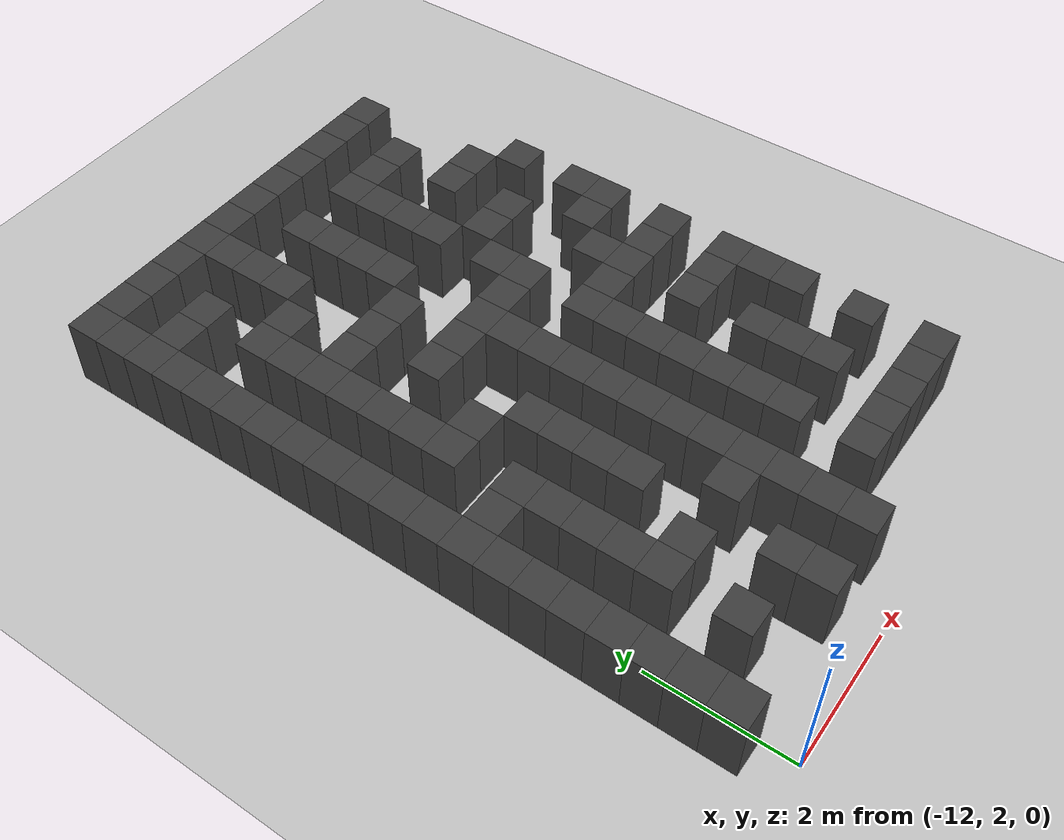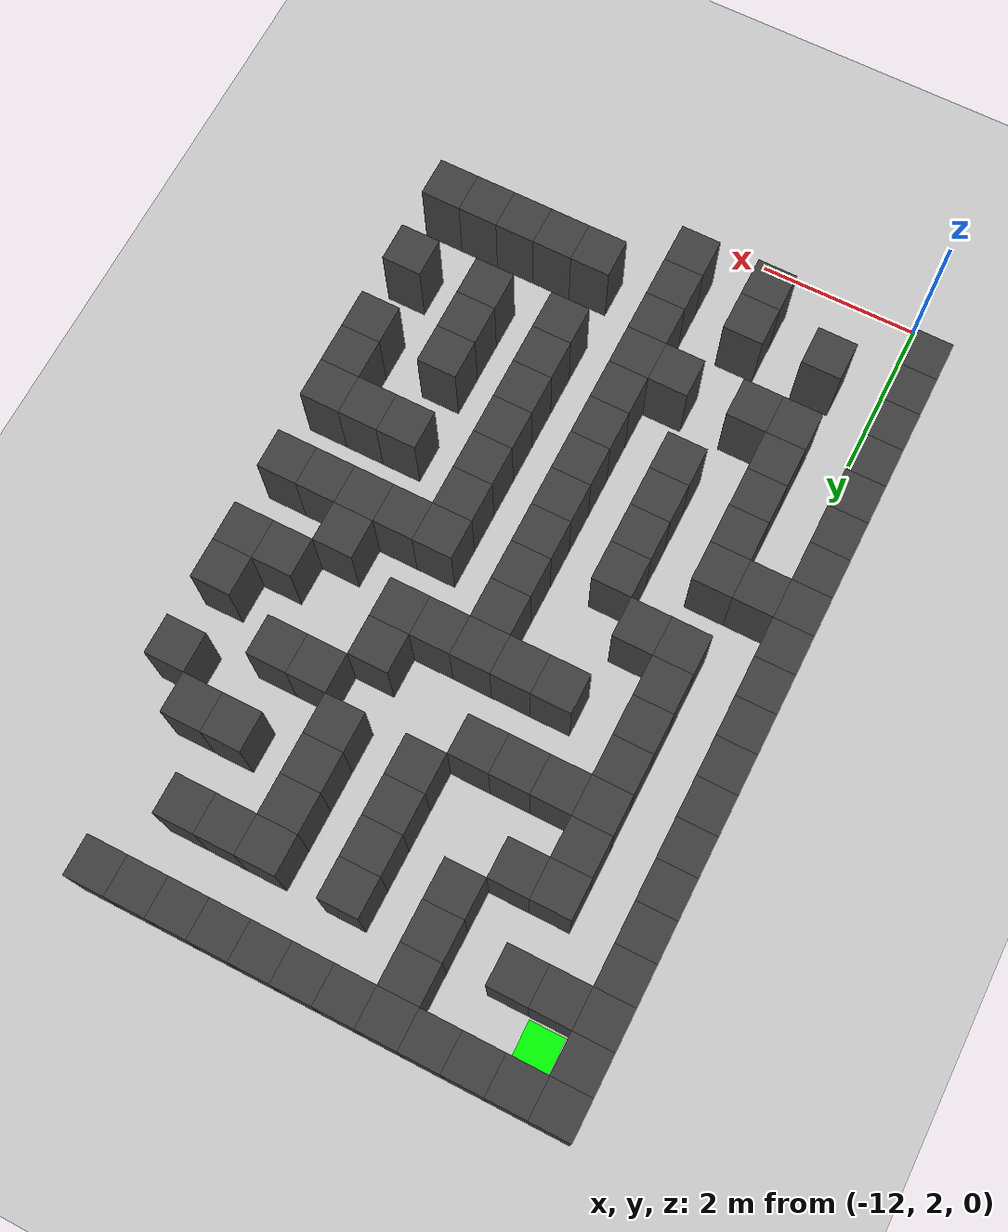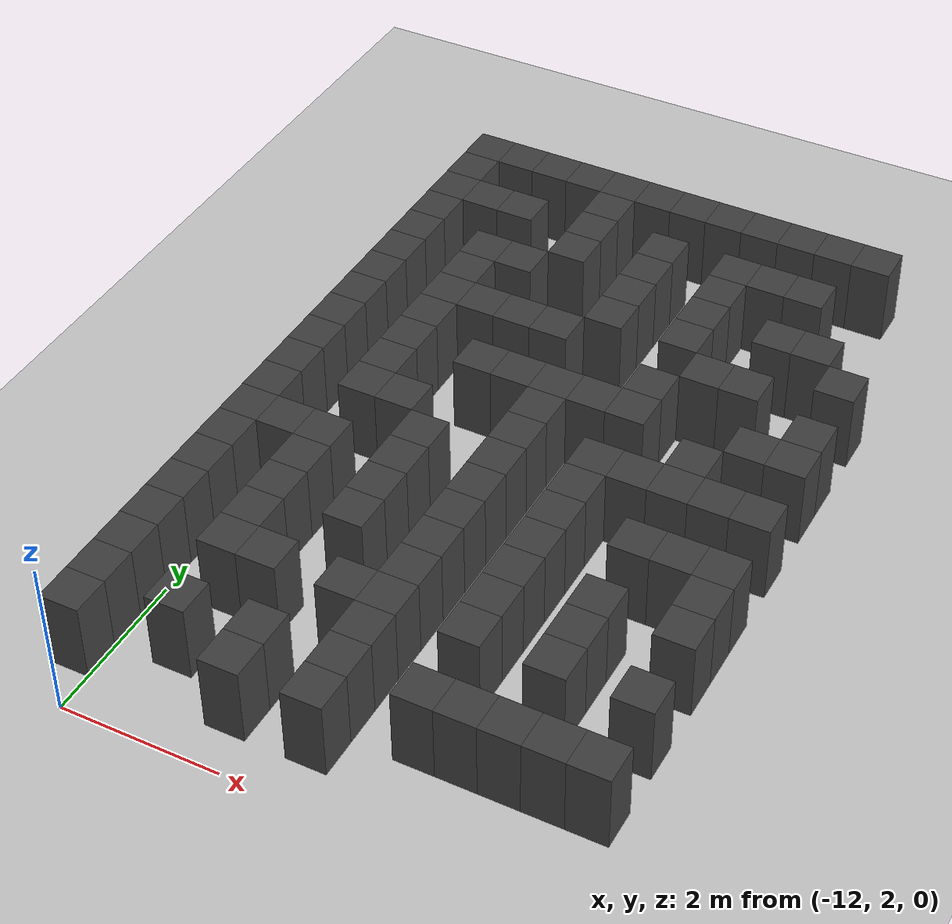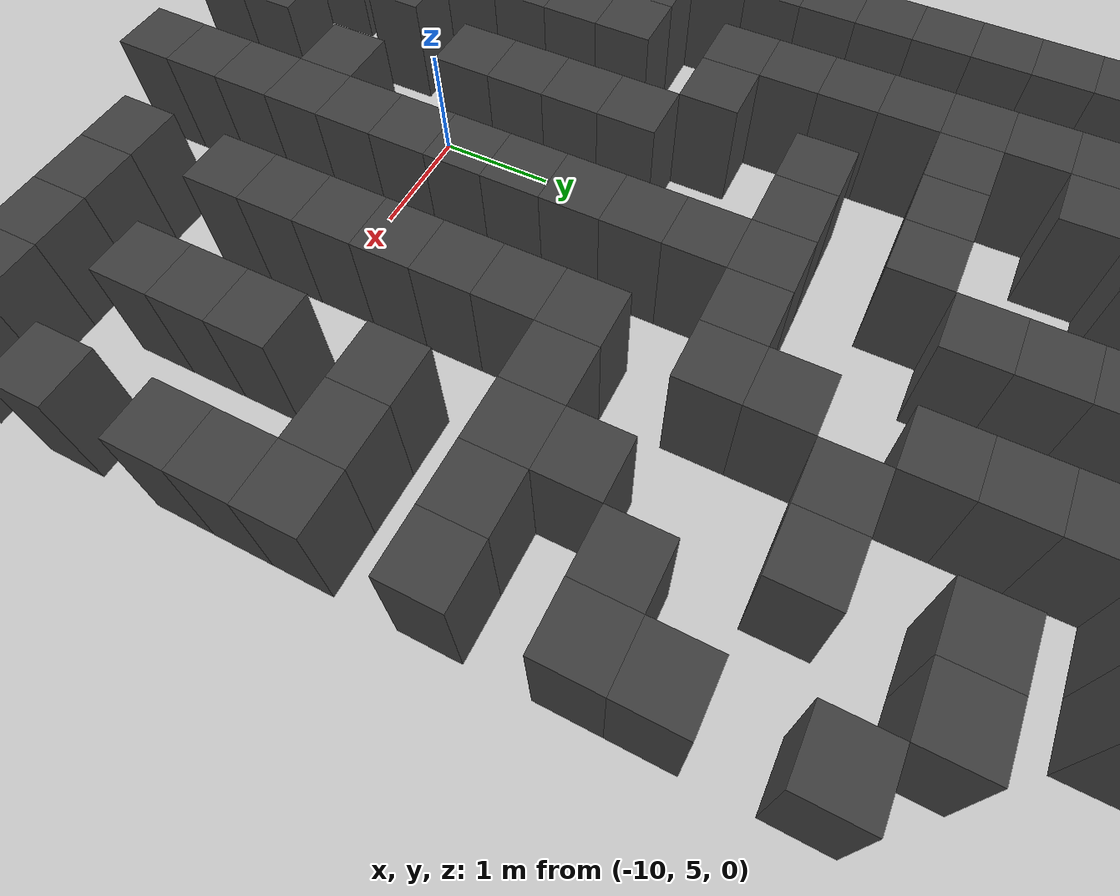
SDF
<sdf version="1.7">
 <world name="map_16588">
  <model name="ground_plane">
   <static>true</static>
   <link name="link">
    <collision name="collision">
     <geometry><plane><normal>0 0 1</normal><size>200 200</size></plane></geometry>
    </collision>
    <visual name="visual">
     <geometry><plane><normal>0 0 1</normal><size>200 200</size></plane></geometry>
     <material><ambient>0.8 0.8 0.8 1</ambient><diffuse>0.8 0.8 0.8 1</diffuse></material>
    </visual>
   </link>
  </model>
  <model name="maze_environment">
   <static>true</static>
   <link name="wall_0">
    <pose>-12.250 12.250 0.500 0 0 0</pose>
    <collision name="col"><geometry><box><size>0.5 0.5 1.0</size></box></geometry></collision>
    <visual name="vis">
     <geometry><box><size>0.5 0.5 1.0</size></box></geometry>
     <material><ambient>0.15 0.15 0.15 1</ambient><diffuse>0.25 0.25 0.25 1</diffuse></material>
    </visual>
   </link>
   <link name="wall_1">
    <pose>-11.750 12.250 0.500 0 0 0</pose>
    <collision name="col"><geometry><box><size>0.5 0.5 1.0</size></box></geometry></collision>
    <visual name="vis">
     <geometry><box><size>0.5 0.5 1.0</size></box></geometry>
     <material><ambient>0.15 0.15 0.15 1</ambient><diffuse>0.25 0.25 0.25 1</diffuse></material>
    </visual>
   </link>
   <link name="wall_2">
    <pose>-11.250 12.250 0.500 0 0 0</pose>
    <collision name="col"><geometry><box><size>0.5 0.5 1.0</size></box></geometry></collision>
    <visual name="vis">
     <geometry><box><size>0.5 0.5 1.0</size></box></geometry>
     <material><ambient>0.15 0.15 0.15 1</ambient><diffuse>0.25 0.25 0.25 1</diffuse></material>
    </visual>
   </link>
   <link name="wall_3">
    <pose>-10.750 12.250 0.500 0 0 0</pose>
    <collision name="col"><geometry><box><size>0.5 0.5 1.0</size></box></geometry></collision>
    <visual name="vis">
     <geometry><box><size>0.5 0.5 1.0</size></box></geometry>
     <material><ambient>0.15 0.15 0.15 1</ambient><diffuse>0.25 0.25 0.25 1</diffuse></material>
    </visual>
   </link>
   <link name="wall_4">
    <pose>-10.250 12.250 0.500 0 0 0</pose>
    <collision name="col"><geometry><box><size>0.5 0.5 1.0</size></box></geometry></collision>
    <visual name="vis">
     <geometry><box><size>0.5 0.5 1.0</size></box></geometry>
     <material><ambient>0.15 0.15 0.15 1</ambient><diffuse>0.25 0.25 0.25 1</diffuse></material>
    </visual>
   </link>
   <link name="wall_5">
    <pose>-9.750 12.250 0.500 0 0 0</pose>
    <collision name="col"><geometry><box><size>0.5 0.5 1.0</size></box></geometry></collision>
    <visual name="vis">
     <geometry><box><size>0.5 0.5 1.0</size></box></geometry>
     <material><ambient>0.15 0.15 0.15 1</ambient><diffuse>0.25 0.25 0.25 1</diffuse></material>
    </visual>
   </link>
   <link name="wall_6">
    <pose>-9.250 12.250 0.500 0 0 0</pose>
    <collision name="col"><geometry><box><size>0.5 0.5 1.0</size></box></geometry></collision>
    <visual name="vis">
     <geometry><box><size>0.5 0.5 1.0</size></box></geometry>
     <material><ambient>0.15 0.15 0.15 1</ambient><diffuse>0.25 0.25 0.25 1</diffuse></material>
    </visual>
   </link>
   <link name="wall_7">
    <pose>-8.750 12.250 0.500 0 0 0</pose>
    <collision name="col"><geometry><box><size>0.5 0.5 1.0</size></box></geometry></collision>
    <visual name="vis">
     <geometry><box><size>0.5 0.5 1.0</size></box></geometry>
     <material><ambient>0.15 0.15 0.15 1</ambient><diffuse>0.25 0.25 0.25 1</diffuse></material>
    </visual>
   </link>
   <link name="wall_8">
    <pose>-8.250 12.250 0.500 0 0 0</pose>
    <collision name="col"><geometry><box><size>0.5 0.5 1.0</size></box></geometry></collision>
    <visual name="vis">
     <geometry><box><size>0.5 0.5 1.0</size></box></geometry>
     <material><ambient>0.15 0.15 0.15 1</ambient><diffuse>0.25 0.25 0.25 1</diffuse></material>
    </visual>
   </link>
   <link name="wall_9">
    <pose>-7.750 12.250 0.500 0 0 0</pose>
    <collision name="col"><geometry><box><size>0.5 0.5 1.0</size></box></geometry></collision>
    <visual name="vis">
     <geometry><box><size>0.5 0.5 1.0</size></box></geometry>
     <material><ambient>0.15 0.15 0.15 1</ambient><diffuse>0.25 0.25 0.25 1</diffuse></material>
    </visual>
   </link>
   <link name="wall_10">
    <pose>-7.250 12.250 0.500 0 0 0</pose>
    <collision name="col"><geometry><box><size>0.5 0.5 1.0</size></box></geometry></collision>
    <visual name="vis">
     <geometry><box><size>0.5 0.5 1.0</size></box></geometry>
     <material><ambient>0.15 0.15 0.15 1</ambient><diffuse>0.25 0.25 0.25 1</diffuse></material>
    </visual>
   </link>
   <link name="wall_11">
    <pose>-6.750 12.250 0.500 0 0 0</pose>
    <collision name="col"><geometry><box><size>0.5 0.5 1.0</size></box></geometry></collision>
    <visual name="vis">
     <geometry><box><size>0.5 0.5 1.0</size></box></geometry>
     <material><ambient>0.15 0.15 0.15 1</ambient><diffuse>0.25 0.25 0.25 1</diffuse></material>
    </visual>
   </link>
   <link name="wall_50">
    <pose>-12.250 11.750 0.500 0 0 0</pose>
    <collision name="col"><geometry><box><size>0.5 0.5 1.0</size></box></geometry></collision>
    <visual name="vis">
     <geometry><box><size>0.5 0.5 1.0</size></box></geometry>
     <material><ambient>0.15 0.15 0.15 1</ambient><diffuse>0.25 0.25 0.25 1</diffuse></material>
    </visual>
   </link>
   <link name="wall_51">
    <pose>-10.250 11.750 0.500 0 0 0</pose>
    <collision name="col"><geometry><box><size>0.5 0.5 1.0</size></box></geometry></collision>
    <visual name="vis">
     <geometry><box><size>0.5 0.5 1.0</size></box></geometry>
     <material><ambient>0.15 0.15 0.15 1</ambient><diffuse>0.25 0.25 0.25 1</diffuse></material>
    </visual>
   </link>
   <link name="wall_59">
    <pose>-12.250 11.250 0.500 0 0 0</pose>
    <collision name="col"><geometry><box><size>0.5 0.5 1.0</size></box></geometry></collision>
    <visual name="vis">
     <geometry><box><size>0.5 0.5 1.0</size></box></geometry>
     <material><ambient>0.15 0.15 0.15 1</ambient><diffuse>0.25 0.25 0.25 1</diffuse></material>
    </visual>
   </link>
   <link name="wall_60">
    <pose>-11.750 11.250 0.500 0 0 0</pose>
    <collision name="col"><geometry><box><size>0.5 0.5 1.0</size></box></geometry></collision>
    <visual name="vis">
     <geometry><box><size>0.5 0.5 1.0</size></box></geometry>
     <material><ambient>0.15 0.15 0.15 1</ambient><diffuse>0.25 0.25 0.25 1</diffuse></material>
    </visual>
   </link>
   <link name="wall_61">
    <pose>-11.250 11.250 0.500 0 0 0</pose>
    <collision name="col"><geometry><box><size>0.5 0.5 1.0</size></box></geometry></collision>
    <visual name="vis">
     <geometry><box><size>0.5 0.5 1.0</size></box></geometry>
     <material><ambient>0.15 0.15 0.15 1</ambient><diffuse>0.25 0.25 0.25 1</diffuse></material>
    </visual>
   </link>
   <link name="wall_62">
    <pose>-10.250 11.250 0.500 0 0 0</pose>
    <collision name="col"><geometry><box><size>0.5 0.5 1.0</size></box></geometry></collision>
    <visual name="vis">
     <geometry><box><size>0.5 0.5 1.0</size></box></geometry>
     <material><ambient>0.15 0.15 0.15 1</ambient><diffuse>0.25 0.25 0.25 1</diffuse></material>
    </visual>
   </link>
   <link name="wall_63">
    <pose>-9.250 11.250 0.500 0 0 0</pose>
    <collision name="col"><geometry><box><size>0.5 0.5 1.0</size></box></geometry></collision>
    <visual name="vis">
     <geometry><box><size>0.5 0.5 1.0</size></box></geometry>
     <material><ambient>0.15 0.15 0.15 1</ambient><diffuse>0.25 0.25 0.25 1</diffuse></material>
    </visual>
   </link>
   <link name="wall_64">
    <pose>-8.250 11.250 0.500 0 0 0</pose>
    <collision name="col"><geometry><box><size>0.5 0.5 1.0</size></box></geometry></collision>
    <visual name="vis">
     <geometry><box><size>0.5 0.5 1.0</size></box></geometry>
     <material><ambient>0.15 0.15 0.15 1</ambient><diffuse>0.25 0.25 0.25 1</diffuse></material>
    </visual>
   </link>
   <link name="wall_65">
    <pose>-7.750 11.250 0.500 0 0 0</pose>
    <collision name="col"><geometry><box><size>0.5 0.5 1.0</size></box></geometry></collision>
    <visual name="vis">
     <geometry><box><size>0.5 0.5 1.0</size></box></geometry>
     <material><ambient>0.15 0.15 0.15 1</ambient><diffuse>0.25 0.25 0.25 1</diffuse></material>
    </visual>
   </link>
   <link name="wall_66">
    <pose>-7.250 11.250 0.500 0 0 0</pose>
    <collision name="col"><geometry><box><size>0.5 0.5 1.0</size></box></geometry></collision>
    <visual name="vis">
     <geometry><box><size>0.5 0.5 1.0</size></box></geometry>
     <material><ambient>0.15 0.15 0.15 1</ambient><diffuse>0.25 0.25 0.25 1</diffuse></material>
    </visual>
   </link>
   <link name="wall_93">
    <pose>-12.250 10.750 0.500 0 0 0</pose>
    <collision name="col"><geometry><box><size>0.5 0.5 1.0</size></box></geometry></collision>
    <visual name="vis">
     <geometry><box><size>0.5 0.5 1.0</size></box></geometry>
     <material><ambient>0.15 0.15 0.15 1</ambient><diffuse>0.25 0.25 0.25 1</diffuse></material>
    </visual>
   </link>
   <link name="wall_94">
    <pose>-10.250 10.750 0.500 0 0 0</pose>
    <collision name="col"><geometry><box><size>0.5 0.5 1.0</size></box></geometry></collision>
    <visual name="vis">
     <geometry><box><size>0.5 0.5 1.0</size></box></geometry>
     <material><ambient>0.15 0.15 0.15 1</ambient><diffuse>0.25 0.25 0.25 1</diffuse></material>
    </visual>
   </link>
   <link name="wall_95">
    <pose>-9.250 10.750 0.500 0 0 0</pose>
    <collision name="col"><geometry><box><size>0.5 0.5 1.0</size></box></geometry></collision>
    <visual name="vis">
     <geometry><box><size>0.5 0.5 1.0</size></box></geometry>
     <material><ambient>0.15 0.15 0.15 1</ambient><diffuse>0.25 0.25 0.25 1</diffuse></material>
    </visual>
   </link>
   <link name="wall_96">
    <pose>-8.250 10.750 0.500 0 0 0</pose>
    <collision name="col"><geometry><box><size>0.5 0.5 1.0</size></box></geometry></collision>
    <visual name="vis">
     <geometry><box><size>0.5 0.5 1.0</size></box></geometry>
     <material><ambient>0.15 0.15 0.15 1</ambient><diffuse>0.25 0.25 0.25 1</diffuse></material>
    </visual>
   </link>
   <link name="wall_108">
    <pose>-12.250 10.250 0.500 0 0 0</pose>
    <collision name="col"><geometry><box><size>0.5 0.5 1.0</size></box></geometry></collision>
    <visual name="vis">
     <geometry><box><size>0.5 0.5 1.0</size></box></geometry>
     <material><ambient>0.15 0.15 0.15 1</ambient><diffuse>0.25 0.25 0.25 1</diffuse></material>
    </visual>
   </link>
   <link name="wall_109">
    <pose>-11.250 10.250 0.500 0 0 0</pose>
    <collision name="col"><geometry><box><size>0.5 0.5 1.0</size></box></geometry></collision>
    <visual name="vis">
     <geometry><box><size>0.5 0.5 1.0</size></box></geometry>
     <material><ambient>0.15 0.15 0.15 1</ambient><diffuse>0.25 0.25 0.25 1</diffuse></material>
    </visual>
   </link>
   <link name="wall_110">
    <pose>-10.750 10.250 0.500 0 0 0</pose>
    <collision name="col"><geometry><box><size>0.5 0.5 1.0</size></box></geometry></collision>
    <visual name="vis">
     <geometry><box><size>0.5 0.5 1.0</size></box></geometry>
     <material><ambient>0.15 0.15 0.15 1</ambient><diffuse>0.25 0.25 0.25 1</diffuse></material>
    </visual>
   </link>
   <link name="wall_111">
    <pose>-9.250 10.250 0.500 0 0 0</pose>
    <collision name="col"><geometry><box><size>0.5 0.5 1.0</size></box></geometry></collision>
    <visual name="vis">
     <geometry><box><size>0.5 0.5 1.0</size></box></geometry>
     <material><ambient>0.15 0.15 0.15 1</ambient><diffuse>0.25 0.25 0.25 1</diffuse></material>
    </visual>
   </link>
   <link name="wall_112">
    <pose>-8.250 10.250 0.500 0 0 0</pose>
    <collision name="col"><geometry><box><size>0.5 0.5 1.0</size></box></geometry></collision>
    <visual name="vis">
     <geometry><box><size>0.5 0.5 1.0</size></box></geometry>
     <material><ambient>0.15 0.15 0.15 1</ambient><diffuse>0.25 0.25 0.25 1</diffuse></material>
    </visual>
   </link>
   <link name="wall_113">
    <pose>-7.250 10.250 0.500 0 0 0</pose>
    <collision name="col"><geometry><box><size>0.5 0.5 1.0</size></box></geometry></collision>
    <visual name="vis">
     <geometry><box><size>0.5 0.5 1.0</size></box></geometry>
     <material><ambient>0.15 0.15 0.15 1</ambient><diffuse>0.25 0.25 0.25 1</diffuse></material>
    </visual>
   </link>
   <link name="wall_114">
    <pose>-6.750 10.250 0.500 0 0 0</pose>
    <collision name="col"><geometry><box><size>0.5 0.5 1.0</size></box></geometry></collision>
    <visual name="vis">
     <geometry><box><size>0.5 0.5 1.0</size></box></geometry>
     <material><ambient>0.15 0.15 0.15 1</ambient><diffuse>0.25 0.25 0.25 1</diffuse></material>
    </visual>
   </link>
   <link name="wall_141">
    <pose>-12.250 9.750 0.500 0 0 0</pose>
    <collision name="col"><geometry><box><size>0.5 0.5 1.0</size></box></geometry></collision>
    <visual name="vis">
     <geometry><box><size>0.5 0.5 1.0</size></box></geometry>
     <material><ambient>0.15 0.15 0.15 1</ambient><diffuse>0.25 0.25 0.25 1</diffuse></material>
    </visual>
   </link>
   <link name="wall_142">
    <pose>-11.250 9.750 0.500 0 0 0</pose>
    <collision name="col"><geometry><box><size>0.5 0.5 1.0</size></box></geometry></collision>
    <visual name="vis">
     <geometry><box><size>0.5 0.5 1.0</size></box></geometry>
     <material><ambient>0.15 0.15 0.15 1</ambient><diffuse>0.25 0.25 0.25 1</diffuse></material>
    </visual>
   </link>
   <link name="wall_143">
    <pose>-9.250 9.750 0.500 0 0 0</pose>
    <collision name="col"><geometry><box><size>0.5 0.5 1.0</size></box></geometry></collision>
    <visual name="vis">
     <geometry><box><size>0.5 0.5 1.0</size></box></geometry>
     <material><ambient>0.15 0.15 0.15 1</ambient><diffuse>0.25 0.25 0.25 1</diffuse></material>
    </visual>
   </link>
   <link name="wall_144">
    <pose>-8.250 9.750 0.500 0 0 0</pose>
    <collision name="col"><geometry><box><size>0.5 0.5 1.0</size></box></geometry></collision>
    <visual name="vis">
     <geometry><box><size>0.5 0.5 1.0</size></box></geometry>
     <material><ambient>0.15 0.15 0.15 1</ambient><diffuse>0.25 0.25 0.25 1</diffuse></material>
    </visual>
   </link>
   <link name="wall_145">
    <pose>-6.250 9.750 0.500 0 0 0</pose>
    <collision name="col"><geometry><box><size>0.5 0.5 1.0</size></box></geometry></collision>
    <visual name="vis">
     <geometry><box><size>0.5 0.5 1.0</size></box></geometry>
     <material><ambient>0.15 0.15 0.15 1</ambient><diffuse>0.25 0.25 0.25 1</diffuse></material>
    </visual>
   </link>
   <link name="wall_155">
    <pose>-12.250 9.250 0.500 0 0 0</pose>
    <collision name="col"><geometry><box><size>0.5 0.5 1.0</size></box></geometry></collision>
    <visual name="vis">
     <geometry><box><size>0.5 0.5 1.0</size></box></geometry>
     <material><ambient>0.15 0.15 0.15 1</ambient><diffuse>0.25 0.25 0.25 1</diffuse></material>
    </visual>
   </link>
   <link name="wall_156">
    <pose>-11.250 9.250 0.500 0 0 0</pose>
    <collision name="col"><geometry><box><size>0.5 0.5 1.0</size></box></geometry></collision>
    <visual name="vis">
     <geometry><box><size>0.5 0.5 1.0</size></box></geometry>
     <material><ambient>0.15 0.15 0.15 1</ambient><diffuse>0.25 0.25 0.25 1</diffuse></material>
    </visual>
   </link>
   <link name="wall_157">
    <pose>-10.750 9.250 0.500 0 0 0</pose>
    <collision name="col"><geometry><box><size>0.5 0.5 1.0</size></box></geometry></collision>
    <visual name="vis">
     <geometry><box><size>0.5 0.5 1.0</size></box></geometry>
     <material><ambient>0.15 0.15 0.15 1</ambient><diffuse>0.25 0.25 0.25 1</diffuse></material>
    </visual>
   </link>
   <link name="wall_158">
    <pose>-10.250 9.250 0.500 0 0 0</pose>
    <collision name="col"><geometry><box><size>0.5 0.5 1.0</size></box></geometry></collision>
    <visual name="vis">
     <geometry><box><size>0.5 0.5 1.0</size></box></geometry>
     <material><ambient>0.15 0.15 0.15 1</ambient><diffuse>0.25 0.25 0.25 1</diffuse></material>
    </visual>
   </link>
   <link name="wall_159">
    <pose>-9.750 9.250 0.500 0 0 0</pose>
    <collision name="col"><geometry><box><size>0.5 0.5 1.0</size></box></geometry></collision>
    <visual name="vis">
     <geometry><box><size>0.5 0.5 1.0</size></box></geometry>
     <material><ambient>0.15 0.15 0.15 1</ambient><diffuse>0.25 0.25 0.25 1</diffuse></material>
    </visual>
   </link>
   <link name="wall_160">
    <pose>-7.750 9.250 0.500 0 0 0</pose>
    <collision name="col"><geometry><box><size>0.5 0.5 1.0</size></box></geometry></collision>
    <visual name="vis">
     <geometry><box><size>0.5 0.5 1.0</size></box></geometry>
     <material><ambient>0.15 0.15 0.15 1</ambient><diffuse>0.25 0.25 0.25 1</diffuse></material>
    </visual>
   </link>
   <link name="wall_161">
    <pose>-7.250 9.250 0.500 0 0 0</pose>
    <collision name="col"><geometry><box><size>0.5 0.5 1.0</size></box></geometry></collision>
    <visual name="vis">
     <geometry><box><size>0.5 0.5 1.0</size></box></geometry>
     <material><ambient>0.15 0.15 0.15 1</ambient><diffuse>0.25 0.25 0.25 1</diffuse></material>
    </visual>
   </link>
   <link name="wall_189">
    <pose>-12.250 8.750 0.500 0 0 0</pose>
    <collision name="col"><geometry><box><size>0.5 0.5 1.0</size></box></geometry></collision>
    <visual name="vis">
     <geometry><box><size>0.5 0.5 1.0</size></box></geometry>
     <material><ambient>0.15 0.15 0.15 1</ambient><diffuse>0.25 0.25 0.25 1</diffuse></material>
    </visual>
   </link>
   <link name="wall_190">
    <pose>-11.250 8.750 0.500 0 0 0</pose>
    <collision name="col"><geometry><box><size>0.5 0.5 1.0</size></box></geometry></collision>
    <visual name="vis">
     <geometry><box><size>0.5 0.5 1.0</size></box></geometry>
     <material><ambient>0.15 0.15 0.15 1</ambient><diffuse>0.25 0.25 0.25 1</diffuse></material>
    </visual>
   </link>
   <link name="wall_191">
    <pose>-8.250 8.750 0.500 0 0 0</pose>
    <collision name="col"><geometry><box><size>0.5 0.5 1.0</size></box></geometry></collision>
    <visual name="vis">
     <geometry><box><size>0.5 0.5 1.0</size></box></geometry>
     <material><ambient>0.15 0.15 0.15 1</ambient><diffuse>0.25 0.25 0.25 1</diffuse></material>
    </visual>
   </link>
   <link name="wall_192">
    <pose>-6.250 8.750 0.500 0 0 0</pose>
    <collision name="col"><geometry><box><size>0.5 0.5 1.0</size></box></geometry></collision>
    <visual name="vis">
     <geometry><box><size>0.5 0.5 1.0</size></box></geometry>
     <material><ambient>0.15 0.15 0.15 1</ambient><diffuse>0.25 0.25 0.25 1</diffuse></material>
    </visual>
   </link>
   <link name="wall_203">
    <pose>-12.250 8.250 0.500 0 0 0</pose>
    <collision name="col"><geometry><box><size>0.5 0.5 1.0</size></box></geometry></collision>
    <visual name="vis">
     <geometry><box><size>0.5 0.5 1.0</size></box></geometry>
     <material><ambient>0.15 0.15 0.15 1</ambient><diffuse>0.25 0.25 0.25 1</diffuse></material>
    </visual>
   </link>
   <link name="wall_204">
    <pose>-11.250 8.250 0.500 0 0 0</pose>
    <collision name="col"><geometry><box><size>0.5 0.5 1.0</size></box></geometry></collision>
    <visual name="vis">
     <geometry><box><size>0.5 0.5 1.0</size></box></geometry>
     <material><ambient>0.15 0.15 0.15 1</ambient><diffuse>0.25 0.25 0.25 1</diffuse></material>
    </visual>
   </link>
   <link name="wall_205">
    <pose>-10.250 8.250 0.500 0 0 0</pose>
    <collision name="col"><geometry><box><size>0.5 0.5 1.0</size></box></geometry></collision>
    <visual name="vis">
     <geometry><box><size>0.5 0.5 1.0</size></box></geometry>
     <material><ambient>0.15 0.15 0.15 1</ambient><diffuse>0.25 0.25 0.25 1</diffuse></material>
    </visual>
   </link>
   <link name="wall_206">
    <pose>-9.750 8.250 0.500 0 0 0</pose>
    <collision name="col"><geometry><box><size>0.5 0.5 1.0</size></box></geometry></collision>
    <visual name="vis">
     <geometry><box><size>0.5 0.5 1.0</size></box></geometry>
     <material><ambient>0.15 0.15 0.15 1</ambient><diffuse>0.25 0.25 0.25 1</diffuse></material>
    </visual>
   </link>
   <link name="wall_207">
    <pose>-9.250 8.250 0.500 0 0 0</pose>
    <collision name="col"><geometry><box><size>0.5 0.5 1.0</size></box></geometry></collision>
    <visual name="vis">
     <geometry><box><size>0.5 0.5 1.0</size></box></geometry>
     <material><ambient>0.15 0.15 0.15 1</ambient><diffuse>0.25 0.25 0.25 1</diffuse></material>
    </visual>
   </link>
   <link name="wall_208">
    <pose>-8.750 8.250 0.500 0 0 0</pose>
    <collision name="col"><geometry><box><size>0.5 0.5 1.0</size></box></geometry></collision>
    <visual name="vis">
     <geometry><box><size>0.5 0.5 1.0</size></box></geometry>
     <material><ambient>0.15 0.15 0.15 1</ambient><diffuse>0.25 0.25 0.25 1</diffuse></material>
    </visual>
   </link>
   <link name="wall_209">
    <pose>-8.250 8.250 0.500 0 0 0</pose>
    <collision name="col"><geometry><box><size>0.5 0.5 1.0</size></box></geometry></collision>
    <visual name="vis">
     <geometry><box><size>0.5 0.5 1.0</size></box></geometry>
     <material><ambient>0.15 0.15 0.15 1</ambient><diffuse>0.25 0.25 0.25 1</diffuse></material>
    </visual>
   </link>
   <link name="wall_210">
    <pose>-6.750 8.250 0.500 0 0 0</pose>
    <collision name="col"><geometry><box><size>0.5 0.5 1.0</size></box></geometry></collision>
    <visual name="vis">
     <geometry><box><size>0.5 0.5 1.0</size></box></geometry>
     <material><ambient>0.15 0.15 0.15 1</ambient><diffuse>0.25 0.25 0.25 1</diffuse></material>
    </visual>
   </link>
   <link name="wall_211">
    <pose>-6.250 8.250 0.500 0 0 0</pose>
    <collision name="col"><geometry><box><size>0.5 0.5 1.0</size></box></geometry></collision>
    <visual name="vis">
     <geometry><box><size>0.5 0.5 1.0</size></box></geometry>
     <material><ambient>0.15 0.15 0.15 1</ambient><diffuse>0.25 0.25 0.25 1</diffuse></material>
    </visual>
   </link>
   <link name="wall_233">
    <pose>-12.250 7.750 0.500 0 0 0</pose>
    <collision name="col"><geometry><box><size>0.5 0.5 1.0</size></box></geometry></collision>
    <visual name="vis">
     <geometry><box><size>0.5 0.5 1.0</size></box></geometry>
     <material><ambient>0.15 0.15 0.15 1</ambient><diffuse>0.25 0.25 0.25 1</diffuse></material>
    </visual>
   </link>
   <link name="wall_234">
    <pose>-11.250 7.750 0.500 0 0 0</pose>
    <collision name="col"><geometry><box><size>0.5 0.5 1.0</size></box></geometry></collision>
    <visual name="vis">
     <geometry><box><size>0.5 0.5 1.0</size></box></geometry>
     <material><ambient>0.15 0.15 0.15 1</ambient><diffuse>0.25 0.25 0.25 1</diffuse></material>
    </visual>
   </link>
   <link name="wall_235">
    <pose>-9.250 7.750 0.500 0 0 0</pose>
    <collision name="col"><geometry><box><size>0.5 0.5 1.0</size></box></geometry></collision>
    <visual name="vis">
     <geometry><box><size>0.5 0.5 1.0</size></box></geometry>
     <material><ambient>0.15 0.15 0.15 1</ambient><diffuse>0.25 0.25 0.25 1</diffuse></material>
    </visual>
   </link>
   <link name="wall_236">
    <pose>-7.250 7.750 0.500 0 0 0</pose>
    <collision name="col"><geometry><box><size>0.5 0.5 1.0</size></box></geometry></collision>
    <visual name="vis">
     <geometry><box><size>0.5 0.5 1.0</size></box></geometry>
     <material><ambient>0.15 0.15 0.15 1</ambient><diffuse>0.25 0.25 0.25 1</diffuse></material>
    </visual>
   </link>
   <link name="wall_250">
    <pose>-12.250 7.250 0.500 0 0 0</pose>
    <collision name="col"><geometry><box><size>0.5 0.5 1.0</size></box></geometry></collision>
    <visual name="vis">
     <geometry><box><size>0.5 0.5 1.0</size></box></geometry>
     <material><ambient>0.15 0.15 0.15 1</ambient><diffuse>0.25 0.25 0.25 1</diffuse></material>
    </visual>
   </link>
   <link name="wall_251">
    <pose>-11.250 7.250 0.500 0 0 0</pose>
    <collision name="col"><geometry><box><size>0.5 0.5 1.0</size></box></geometry></collision>
    <visual name="vis">
     <geometry><box><size>0.5 0.5 1.0</size></box></geometry>
     <material><ambient>0.15 0.15 0.15 1</ambient><diffuse>0.25 0.25 0.25 1</diffuse></material>
    </visual>
   </link>
   <link name="wall_252">
    <pose>-10.750 7.250 0.500 0 0 0</pose>
    <collision name="col"><geometry><box><size>0.5 0.5 1.0</size></box></geometry></collision>
    <visual name="vis">
     <geometry><box><size>0.5 0.5 1.0</size></box></geometry>
     <material><ambient>0.15 0.15 0.15 1</ambient><diffuse>0.25 0.25 0.25 1</diffuse></material>
    </visual>
   </link>
   <link name="wall_253">
    <pose>-9.250 7.250 0.500 0 0 0</pose>
    <collision name="col"><geometry><box><size>0.5 0.5 1.0</size></box></geometry></collision>
    <visual name="vis">
     <geometry><box><size>0.5 0.5 1.0</size></box></geometry>
     <material><ambient>0.15 0.15 0.15 1</ambient><diffuse>0.25 0.25 0.25 1</diffuse></material>
    </visual>
   </link>
   <link name="wall_254">
    <pose>-8.250 7.250 0.500 0 0 0</pose>
    <collision name="col"><geometry><box><size>0.5 0.5 1.0</size></box></geometry></collision>
    <visual name="vis">
     <geometry><box><size>0.5 0.5 1.0</size></box></geometry>
     <material><ambient>0.15 0.15 0.15 1</ambient><diffuse>0.25 0.25 0.25 1</diffuse></material>
    </visual>
   </link>
   <link name="wall_255">
    <pose>-7.750 7.250 0.500 0 0 0</pose>
    <collision name="col"><geometry><box><size>0.5 0.5 1.0</size></box></geometry></collision>
    <visual name="vis">
     <geometry><box><size>0.5 0.5 1.0</size></box></geometry>
     <material><ambient>0.15 0.15 0.15 1</ambient><diffuse>0.25 0.25 0.25 1</diffuse></material>
    </visual>
   </link>
   <link name="wall_256">
    <pose>-7.250 7.250 0.500 0 0 0</pose>
    <collision name="col"><geometry><box><size>0.5 0.5 1.0</size></box></geometry></collision>
    <visual name="vis">
     <geometry><box><size>0.5 0.5 1.0</size></box></geometry>
     <material><ambient>0.15 0.15 0.15 1</ambient><diffuse>0.25 0.25 0.25 1</diffuse></material>
    </visual>
   </link>
   <link name="wall_257">
    <pose>-6.750 7.250 0.500 0 0 0</pose>
    <collision name="col"><geometry><box><size>0.5 0.5 1.0</size></box></geometry></collision>
    <visual name="vis">
     <geometry><box><size>0.5 0.5 1.0</size></box></geometry>
     <material><ambient>0.15 0.15 0.15 1</ambient><diffuse>0.25 0.25 0.25 1</diffuse></material>
    </visual>
   </link>
   <link name="wall_258">
    <pose>-6.250 7.250 0.500 0 0 0</pose>
    <collision name="col"><geometry><box><size>0.5 0.5 1.0</size></box></geometry></collision>
    <visual name="vis">
     <geometry><box><size>0.5 0.5 1.0</size></box></geometry>
     <material><ambient>0.15 0.15 0.15 1</ambient><diffuse>0.25 0.25 0.25 1</diffuse></material>
    </visual>
   </link>
   <link name="wall_282">
    <pose>-12.250 6.750 0.500 0 0 0</pose>
    <collision name="col"><geometry><box><size>0.5 0.5 1.0</size></box></geometry></collision>
    <visual name="vis">
     <geometry><box><size>0.5 0.5 1.0</size></box></geometry>
     <material><ambient>0.15 0.15 0.15 1</ambient><diffuse>0.25 0.25 0.25 1</diffuse></material>
    </visual>
   </link>
   <link name="wall_283">
    <pose>-10.250 6.750 0.500 0 0 0</pose>
    <collision name="col"><geometry><box><size>0.5 0.5 1.0</size></box></geometry></collision>
    <visual name="vis">
     <geometry><box><size>0.5 0.5 1.0</size></box></geometry>
     <material><ambient>0.15 0.15 0.15 1</ambient><diffuse>0.25 0.25 0.25 1</diffuse></material>
    </visual>
   </link>
   <link name="wall_284">
    <pose>-9.250 6.750 0.500 0 0 0</pose>
    <collision name="col"><geometry><box><size>0.5 0.5 1.0</size></box></geometry></collision>
    <visual name="vis">
     <geometry><box><size>0.5 0.5 1.0</size></box></geometry>
     <material><ambient>0.15 0.15 0.15 1</ambient><diffuse>0.25 0.25 0.25 1</diffuse></material>
    </visual>
   </link>
   <link name="wall_285">
    <pose>-8.250 6.750 0.500 0 0 0</pose>
    <collision name="col"><geometry><box><size>0.5 0.5 1.0</size></box></geometry></collision>
    <visual name="vis">
     <geometry><box><size>0.5 0.5 1.0</size></box></geometry>
     <material><ambient>0.15 0.15 0.15 1</ambient><diffuse>0.25 0.25 0.25 1</diffuse></material>
    </visual>
   </link>
   <link name="wall_296">
    <pose>-12.250 6.250 0.500 0 0 0</pose>
    <collision name="col"><geometry><box><size>0.5 0.5 1.0</size></box></geometry></collision>
    <visual name="vis">
     <geometry><box><size>0.5 0.5 1.0</size></box></geometry>
     <material><ambient>0.15 0.15 0.15 1</ambient><diffuse>0.25 0.25 0.25 1</diffuse></material>
    </visual>
   </link>
   <link name="wall_297">
    <pose>-11.750 6.250 0.500 0 0 0</pose>
    <collision name="col"><geometry><box><size>0.5 0.5 1.0</size></box></geometry></collision>
    <visual name="vis">
     <geometry><box><size>0.5 0.5 1.0</size></box></geometry>
     <material><ambient>0.15 0.15 0.15 1</ambient><diffuse>0.25 0.25 0.25 1</diffuse></material>
    </visual>
   </link>
   <link name="wall_298">
    <pose>-11.250 6.250 0.500 0 0 0</pose>
    <collision name="col"><geometry><box><size>0.5 0.5 1.0</size></box></geometry></collision>
    <visual name="vis">
     <geometry><box><size>0.5 0.5 1.0</size></box></geometry>
     <material><ambient>0.15 0.15 0.15 1</ambient><diffuse>0.25 0.25 0.25 1</diffuse></material>
    </visual>
   </link>
   <link name="wall_299">
    <pose>-10.250 6.250 0.500 0 0 0</pose>
    <collision name="col"><geometry><box><size>0.5 0.5 1.0</size></box></geometry></collision>
    <visual name="vis">
     <geometry><box><size>0.5 0.5 1.0</size></box></geometry>
     <material><ambient>0.15 0.15 0.15 1</ambient><diffuse>0.25 0.25 0.25 1</diffuse></material>
    </visual>
   </link>
   <link name="wall_300">
    <pose>-9.250 6.250 0.500 0 0 0</pose>
    <collision name="col"><geometry><box><size>0.5 0.5 1.0</size></box></geometry></collision>
    <visual name="vis">
     <geometry><box><size>0.5 0.5 1.0</size></box></geometry>
     <material><ambient>0.15 0.15 0.15 1</ambient><diffuse>0.25 0.25 0.25 1</diffuse></material>
    </visual>
   </link>
   <link name="wall_301">
    <pose>-8.250 6.250 0.500 0 0 0</pose>
    <collision name="col"><geometry><box><size>0.5 0.5 1.0</size></box></geometry></collision>
    <visual name="vis">
     <geometry><box><size>0.5 0.5 1.0</size></box></geometry>
     <material><ambient>0.15 0.15 0.15 1</ambient><diffuse>0.25 0.25 0.25 1</diffuse></material>
    </visual>
   </link>
   <link name="wall_302">
    <pose>-7.250 6.250 0.500 0 0 0</pose>
    <collision name="col"><geometry><box><size>0.5 0.5 1.0</size></box></geometry></collision>
    <visual name="vis">
     <geometry><box><size>0.5 0.5 1.0</size></box></geometry>
     <material><ambient>0.15 0.15 0.15 1</ambient><diffuse>0.25 0.25 0.25 1</diffuse></material>
    </visual>
   </link>
   <link name="wall_303">
    <pose>-6.750 6.250 0.500 0 0 0</pose>
    <collision name="col"><geometry><box><size>0.5 0.5 1.0</size></box></geometry></collision>
    <visual name="vis">
     <geometry><box><size>0.5 0.5 1.0</size></box></geometry>
     <material><ambient>0.15 0.15 0.15 1</ambient><diffuse>0.25 0.25 0.25 1</diffuse></material>
    </visual>
   </link>
   <link name="wall_304">
    <pose>-6.250 6.250 0.500 0 0 0</pose>
    <collision name="col"><geometry><box><size>0.5 0.5 1.0</size></box></geometry></collision>
    <visual name="vis">
     <geometry><box><size>0.5 0.5 1.0</size></box></geometry>
     <material><ambient>0.15 0.15 0.15 1</ambient><diffuse>0.25 0.25 0.25 1</diffuse></material>
    </visual>
   </link>
   <link name="wall_331">
    <pose>-12.250 5.750 0.500 0 0 0</pose>
    <collision name="col"><geometry><box><size>0.5 0.5 1.0</size></box></geometry></collision>
    <visual name="vis">
     <geometry><box><size>0.5 0.5 1.0</size></box></geometry>
     <material><ambient>0.15 0.15 0.15 1</ambient><diffuse>0.25 0.25 0.25 1</diffuse></material>
    </visual>
   </link>
   <link name="wall_332">
    <pose>-11.250 5.750 0.500 0 0 0</pose>
    <collision name="col"><geometry><box><size>0.5 0.5 1.0</size></box></geometry></collision>
    <visual name="vis">
     <geometry><box><size>0.5 0.5 1.0</size></box></geometry>
     <material><ambient>0.15 0.15 0.15 1</ambient><diffuse>0.25 0.25 0.25 1</diffuse></material>
    </visual>
   </link>
   <link name="wall_333">
    <pose>-10.250 5.750 0.500 0 0 0</pose>
    <collision name="col"><geometry><box><size>0.5 0.5 1.0</size></box></geometry></collision>
    <visual name="vis">
     <geometry><box><size>0.5 0.5 1.0</size></box></geometry>
     <material><ambient>0.15 0.15 0.15 1</ambient><diffuse>0.25 0.25 0.25 1</diffuse></material>
    </visual>
   </link>
   <link name="wall_334">
    <pose>-9.250 5.750 0.500 0 0 0</pose>
    <collision name="col"><geometry><box><size>0.5 0.5 1.0</size></box></geometry></collision>
    <visual name="vis">
     <geometry><box><size>0.5 0.5 1.0</size></box></geometry>
     <material><ambient>0.15 0.15 0.15 1</ambient><diffuse>0.25 0.25 0.25 1</diffuse></material>
    </visual>
   </link>
   <link name="wall_335">
    <pose>-8.250 5.750 0.500 0 0 0</pose>
    <collision name="col"><geometry><box><size>0.5 0.5 1.0</size></box></geometry></collision>
    <visual name="vis">
     <geometry><box><size>0.5 0.5 1.0</size></box></geometry>
     <material><ambient>0.15 0.15 0.15 1</ambient><diffuse>0.25 0.25 0.25 1</diffuse></material>
    </visual>
   </link>
   <link name="wall_336">
    <pose>-6.250 5.750 0.500 0 0 0</pose>
    <collision name="col"><geometry><box><size>0.5 0.5 1.0</size></box></geometry></collision>
    <visual name="vis">
     <geometry><box><size>0.5 0.5 1.0</size></box></geometry>
     <material><ambient>0.15 0.15 0.15 1</ambient><diffuse>0.25 0.25 0.25 1</diffuse></material>
    </visual>
   </link>
   <link name="wall_345">
    <pose>-12.250 5.250 0.500 0 0 0</pose>
    <collision name="col"><geometry><box><size>0.5 0.5 1.0</size></box></geometry></collision>
    <visual name="vis">
     <geometry><box><size>0.5 0.5 1.0</size></box></geometry>
     <material><ambient>0.15 0.15 0.15 1</ambient><diffuse>0.25 0.25 0.25 1</diffuse></material>
    </visual>
   </link>
   <link name="wall_346">
    <pose>-11.250 5.250 0.500 0 0 0</pose>
    <collision name="col"><geometry><box><size>0.5 0.5 1.0</size></box></geometry></collision>
    <visual name="vis">
     <geometry><box><size>0.5 0.5 1.0</size></box></geometry>
     <material><ambient>0.15 0.15 0.15 1</ambient><diffuse>0.25 0.25 0.25 1</diffuse></material>
    </visual>
   </link>
   <link name="wall_347">
    <pose>-10.250 5.250 0.500 0 0 0</pose>
    <collision name="col"><geometry><box><size>0.5 0.5 1.0</size></box></geometry></collision>
    <visual name="vis">
     <geometry><box><size>0.5 0.5 1.0</size></box></geometry>
     <material><ambient>0.15 0.15 0.15 1</ambient><diffuse>0.25 0.25 0.25 1</diffuse></material>
    </visual>
   </link>
   <link name="wall_348">
    <pose>-9.250 5.250 0.500 0 0 0</pose>
    <collision name="col"><geometry><box><size>0.5 0.5 1.0</size></box></geometry></collision>
    <visual name="vis">
     <geometry><box><size>0.5 0.5 1.0</size></box></geometry>
     <material><ambient>0.15 0.15 0.15 1</ambient><diffuse>0.25 0.25 0.25 1</diffuse></material>
    </visual>
   </link>
   <link name="wall_349">
    <pose>-8.250 5.250 0.500 0 0 0</pose>
    <collision name="col"><geometry><box><size>0.5 0.5 1.0</size></box></geometry></collision>
    <visual name="vis">
     <geometry><box><size>0.5 0.5 1.0</size></box></geometry>
     <material><ambient>0.15 0.15 0.15 1</ambient><diffuse>0.25 0.25 0.25 1</diffuse></material>
    </visual>
   </link>
   <link name="wall_350">
    <pose>-7.250 5.250 0.500 0 0 0</pose>
    <collision name="col"><geometry><box><size>0.5 0.5 1.0</size></box></geometry></collision>
    <visual name="vis">
     <geometry><box><size>0.5 0.5 1.0</size></box></geometry>
     <material><ambient>0.15 0.15 0.15 1</ambient><diffuse>0.25 0.25 0.25 1</diffuse></material>
    </visual>
   </link>
   <link name="wall_351">
    <pose>-6.250 5.250 0.500 0 0 0</pose>
    <collision name="col"><geometry><box><size>0.5 0.5 1.0</size></box></geometry></collision>
    <visual name="vis">
     <geometry><box><size>0.5 0.5 1.0</size></box></geometry>
     <material><ambient>0.15 0.15 0.15 1</ambient><diffuse>0.25 0.25 0.25 1</diffuse></material>
    </visual>
   </link>
   <link name="wall_373">
    <pose>-12.250 4.750 0.500 0 0 0</pose>
    <collision name="col"><geometry><box><size>0.5 0.5 1.0</size></box></geometry></collision>
    <visual name="vis">
     <geometry><box><size>0.5 0.5 1.0</size></box></geometry>
     <material><ambient>0.15 0.15 0.15 1</ambient><diffuse>0.25 0.25 0.25 1</diffuse></material>
    </visual>
   </link>
   <link name="wall_374">
    <pose>-11.250 4.750 0.500 0 0 0</pose>
    <collision name="col"><geometry><box><size>0.5 0.5 1.0</size></box></geometry></collision>
    <visual name="vis">
     <geometry><box><size>0.5 0.5 1.0</size></box></geometry>
     <material><ambient>0.15 0.15 0.15 1</ambient><diffuse>0.25 0.25 0.25 1</diffuse></material>
    </visual>
   </link>
   <link name="wall_375">
    <pose>-9.250 4.750 0.500 0 0 0</pose>
    <collision name="col"><geometry><box><size>0.5 0.5 1.0</size></box></geometry></collision>
    <visual name="vis">
     <geometry><box><size>0.5 0.5 1.0</size></box></geometry>
     <material><ambient>0.15 0.15 0.15 1</ambient><diffuse>0.25 0.25 0.25 1</diffuse></material>
    </visual>
   </link>
   <link name="wall_376">
    <pose>-8.250 4.750 0.500 0 0 0</pose>
    <collision name="col"><geometry><box><size>0.5 0.5 1.0</size></box></geometry></collision>
    <visual name="vis">
     <geometry><box><size>0.5 0.5 1.0</size></box></geometry>
     <material><ambient>0.15 0.15 0.15 1</ambient><diffuse>0.25 0.25 0.25 1</diffuse></material>
    </visual>
   </link>
   <link name="wall_377">
    <pose>-7.250 4.750 0.500 0 0 0</pose>
    <collision name="col"><geometry><box><size>0.5 0.5 1.0</size></box></geometry></collision>
    <visual name="vis">
     <geometry><box><size>0.5 0.5 1.0</size></box></geometry>
     <material><ambient>0.15 0.15 0.15 1</ambient><diffuse>0.25 0.25 0.25 1</diffuse></material>
    </visual>
   </link>
   <link name="wall_388">
    <pose>-12.250 4.250 0.500 0 0 0</pose>
    <collision name="col"><geometry><box><size>0.5 0.5 1.0</size></box></geometry></collision>
    <visual name="vis">
     <geometry><box><size>0.5 0.5 1.0</size></box></geometry>
     <material><ambient>0.15 0.15 0.15 1</ambient><diffuse>0.25 0.25 0.25 1</diffuse></material>
    </visual>
   </link>
   <link name="wall_389">
    <pose>-11.250 4.250 0.500 0 0 0</pose>
    <collision name="col"><geometry><box><size>0.5 0.5 1.0</size></box></geometry></collision>
    <visual name="vis">
     <geometry><box><size>0.5 0.5 1.0</size></box></geometry>
     <material><ambient>0.15 0.15 0.15 1</ambient><diffuse>0.25 0.25 0.25 1</diffuse></material>
    </visual>
   </link>
   <link name="wall_390">
    <pose>-10.750 4.250 0.500 0 0 0</pose>
    <collision name="col"><geometry><box><size>0.5 0.5 1.0</size></box></geometry></collision>
    <visual name="vis">
     <geometry><box><size>0.5 0.5 1.0</size></box></geometry>
     <material><ambient>0.15 0.15 0.15 1</ambient><diffuse>0.25 0.25 0.25 1</diffuse></material>
    </visual>
   </link>
   <link name="wall_391">
    <pose>-9.750 4.250 0.500 0 0 0</pose>
    <collision name="col"><geometry><box><size>0.5 0.5 1.0</size></box></geometry></collision>
    <visual name="vis">
     <geometry><box><size>0.5 0.5 1.0</size></box></geometry>
     <material><ambient>0.15 0.15 0.15 1</ambient><diffuse>0.25 0.25 0.25 1</diffuse></material>
    </visual>
   </link>
   <link name="wall_392">
    <pose>-9.250 4.250 0.500 0 0 0</pose>
    <collision name="col"><geometry><box><size>0.5 0.5 1.0</size></box></geometry></collision>
    <visual name="vis">
     <geometry><box><size>0.5 0.5 1.0</size></box></geometry>
     <material><ambient>0.15 0.15 0.15 1</ambient><diffuse>0.25 0.25 0.25 1</diffuse></material>
    </visual>
   </link>
   <link name="wall_393">
    <pose>-8.250 4.250 0.500 0 0 0</pose>
    <collision name="col"><geometry><box><size>0.5 0.5 1.0</size></box></geometry></collision>
    <visual name="vis">
     <geometry><box><size>0.5 0.5 1.0</size></box></geometry>
     <material><ambient>0.15 0.15 0.15 1</ambient><diffuse>0.25 0.25 0.25 1</diffuse></material>
    </visual>
   </link>
   <link name="wall_394">
    <pose>-7.250 4.250 0.500 0 0 0</pose>
    <collision name="col"><geometry><box><size>0.5 0.5 1.0</size></box></geometry></collision>
    <visual name="vis">
     <geometry><box><size>0.5 0.5 1.0</size></box></geometry>
     <material><ambient>0.15 0.15 0.15 1</ambient><diffuse>0.25 0.25 0.25 1</diffuse></material>
    </visual>
   </link>
   <link name="wall_395">
    <pose>-6.250 4.250 0.500 0 0 0</pose>
    <collision name="col"><geometry><box><size>0.5 0.5 1.0</size></box></geometry></collision>
    <visual name="vis">
     <geometry><box><size>0.5 0.5 1.0</size></box></geometry>
     <material><ambient>0.15 0.15 0.15 1</ambient><diffuse>0.25 0.25 0.25 1</diffuse></material>
    </visual>
   </link>
   <link name="wall_425">
    <pose>-12.250 3.750 0.500 0 0 0</pose>
    <collision name="col"><geometry><box><size>0.5 0.5 1.0</size></box></geometry></collision>
    <visual name="vis">
     <geometry><box><size>0.5 0.5 1.0</size></box></geometry>
     <material><ambient>0.15 0.15 0.15 1</ambient><diffuse>0.25 0.25 0.25 1</diffuse></material>
    </visual>
   </link>
   <link name="wall_426">
    <pose>-9.250 3.750 0.500 0 0 0</pose>
    <collision name="col"><geometry><box><size>0.5 0.5 1.0</size></box></geometry></collision>
    <visual name="vis">
     <geometry><box><size>0.5 0.5 1.0</size></box></geometry>
     <material><ambient>0.15 0.15 0.15 1</ambient><diffuse>0.25 0.25 0.25 1</diffuse></material>
    </visual>
   </link>
   <link name="wall_435">
    <pose>-12.250 3.250 0.500 0 0 0</pose>
    <collision name="col"><geometry><box><size>0.5 0.5 1.0</size></box></geometry></collision>
    <visual name="vis">
     <geometry><box><size>0.5 0.5 1.0</size></box></geometry>
     <material><ambient>0.15 0.15 0.15 1</ambient><diffuse>0.25 0.25 0.25 1</diffuse></material>
    </visual>
   </link>
   <link name="wall_436">
    <pose>-11.250 3.250 0.500 0 0 0</pose>
    <collision name="col"><geometry><box><size>0.5 0.5 1.0</size></box></geometry></collision>
    <visual name="vis">
     <geometry><box><size>0.5 0.5 1.0</size></box></geometry>
     <material><ambient>0.15 0.15 0.15 1</ambient><diffuse>0.25 0.25 0.25 1</diffuse></material>
    </visual>
   </link>
   <link name="wall_437">
    <pose>-10.250 3.250 0.500 0 0 0</pose>
    <collision name="col"><geometry><box><size>0.5 0.5 1.0</size></box></geometry></collision>
    <visual name="vis">
     <geometry><box><size>0.5 0.5 1.0</size></box></geometry>
     <material><ambient>0.15 0.15 0.15 1</ambient><diffuse>0.25 0.25 0.25 1</diffuse></material>
    </visual>
   </link>
   <link name="wall_438">
    <pose>-9.250 3.250 0.500 0 0 0</pose>
    <collision name="col"><geometry><box><size>0.5 0.5 1.0</size></box></geometry></collision>
    <visual name="vis">
     <geometry><box><size>0.5 0.5 1.0</size></box></geometry>
     <material><ambient>0.15 0.15 0.15 1</ambient><diffuse>0.25 0.25 0.25 1</diffuse></material>
    </visual>
   </link>
   <link name="wall_439">
    <pose>-8.250 3.250 0.500 0 0 0</pose>
    <collision name="col"><geometry><box><size>0.5 0.5 1.0</size></box></geometry></collision>
    <visual name="vis">
     <geometry><box><size>0.5 0.5 1.0</size></box></geometry>
     <material><ambient>0.15 0.15 0.15 1</ambient><diffuse>0.25 0.25 0.25 1</diffuse></material>
    </visual>
   </link>
   <link name="wall_440">
    <pose>-7.750 3.250 0.500 0 0 0</pose>
    <collision name="col"><geometry><box><size>0.5 0.5 1.0</size></box></geometry></collision>
    <visual name="vis">
     <geometry><box><size>0.5 0.5 1.0</size></box></geometry>
     <material><ambient>0.15 0.15 0.15 1</ambient><diffuse>0.25 0.25 0.25 1</diffuse></material>
    </visual>
   </link>
   <link name="wall_441">
    <pose>-7.250 3.250 0.500 0 0 0</pose>
    <collision name="col"><geometry><box><size>0.5 0.5 1.0</size></box></geometry></collision>
    <visual name="vis">
     <geometry><box><size>0.5 0.5 1.0</size></box></geometry>
     <material><ambient>0.15 0.15 0.15 1</ambient><diffuse>0.25 0.25 0.25 1</diffuse></material>
    </visual>
   </link>
   <link name="wall_442">
    <pose>-6.750 3.250 0.500 0 0 0</pose>
    <collision name="col"><geometry><box><size>0.5 0.5 1.0</size></box></geometry></collision>
    <visual name="vis">
     <geometry><box><size>0.5 0.5 1.0</size></box></geometry>
     <material><ambient>0.15 0.15 0.15 1</ambient><diffuse>0.25 0.25 0.25 1</diffuse></material>
    </visual>
   </link>
   <link name="wall_443">
    <pose>-6.250 3.250 0.500 0 0 0</pose>
    <collision name="col"><geometry><box><size>0.5 0.5 1.0</size></box></geometry></collision>
    <visual name="vis">
     <geometry><box><size>0.5 0.5 1.0</size></box></geometry>
     <material><ambient>0.15 0.15 0.15 1</ambient><diffuse>0.25 0.25 0.25 1</diffuse></material>
    </visual>
   </link>
   <link name="wall_471">
    <pose>-12.250 2.750 0.500 0 0 0</pose>
    <collision name="col"><geometry><box><size>0.5 0.5 1.0</size></box></geometry></collision>
    <visual name="vis">
     <geometry><box><size>0.5 0.5 1.0</size></box></geometry>
     <material><ambient>0.15 0.15 0.15 1</ambient><diffuse>0.25 0.25 0.25 1</diffuse></material>
    </visual>
   </link>
   <link name="wall_472">
    <pose>-10.250 2.750 0.500 0 0 0</pose>
    <collision name="col"><geometry><box><size>0.5 0.5 1.0</size></box></geometry></collision>
    <visual name="vis">
     <geometry><box><size>0.5 0.5 1.0</size></box></geometry>
     <material><ambient>0.15 0.15 0.15 1</ambient><diffuse>0.25 0.25 0.25 1</diffuse></material>
    </visual>
   </link>
   <link name="wall_473">
    <pose>-9.250 2.750 0.500 0 0 0</pose>
    <collision name="col"><geometry><box><size>0.5 0.5 1.0</size></box></geometry></collision>
    <visual name="vis">
     <geometry><box><size>0.5 0.5 1.0</size></box></geometry>
     <material><ambient>0.15 0.15 0.15 1</ambient><diffuse>0.25 0.25 0.25 1</diffuse></material>
    </visual>
   </link>
   <link name="start_zone">
    <pose>-11.750 11.750 0.005 0 0 0</pose>
    <visual name="vis">
     <geometry><box><size>0.45 0.45 0.01</size></box></geometry>
     <material>
      <ambient>0.0 1.0 0.0 1</ambient>
      <diffuse>0.0 1.0 0.0 1</diffuse>
      <emissive>0.00 0.60 0.00 1</emissive>
     </material>
    </visual>
   </link>
  </model>
 </world>
</sdf>
